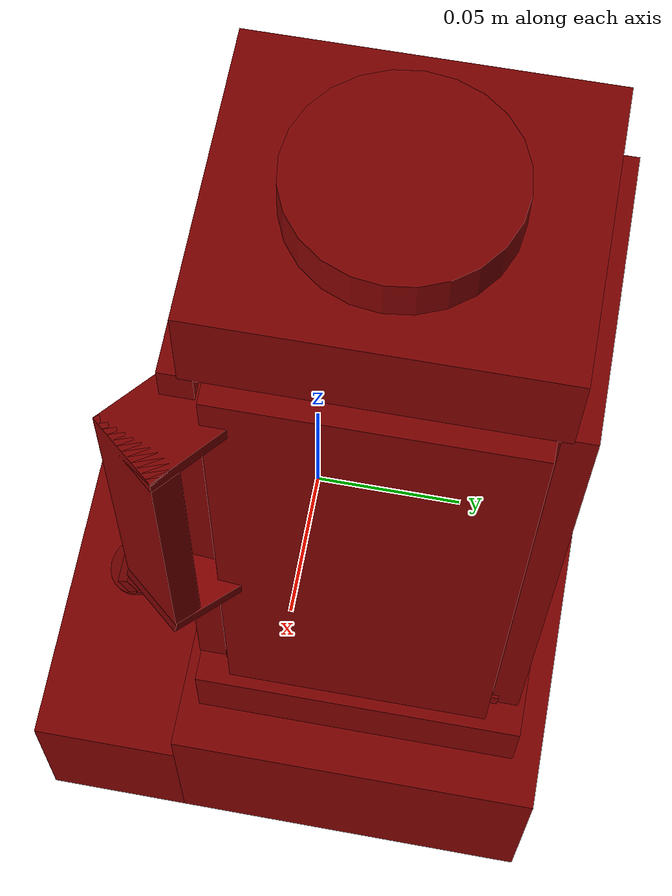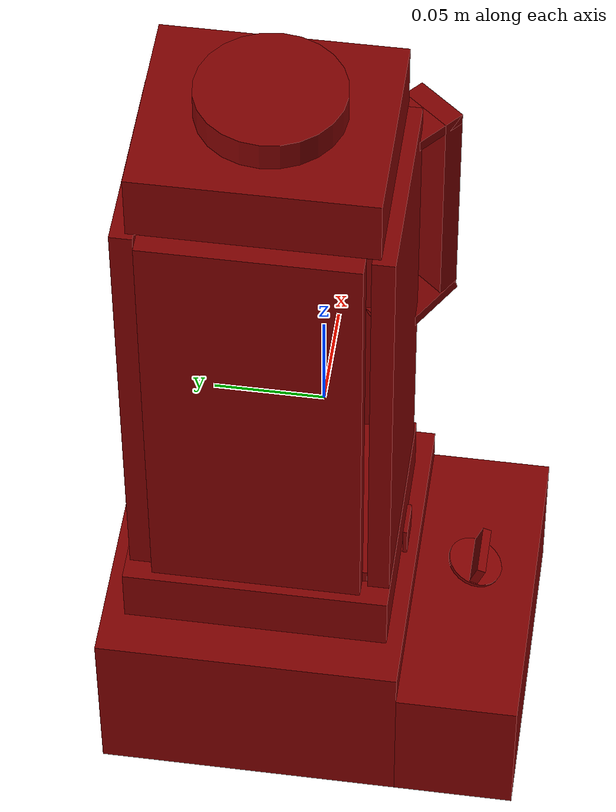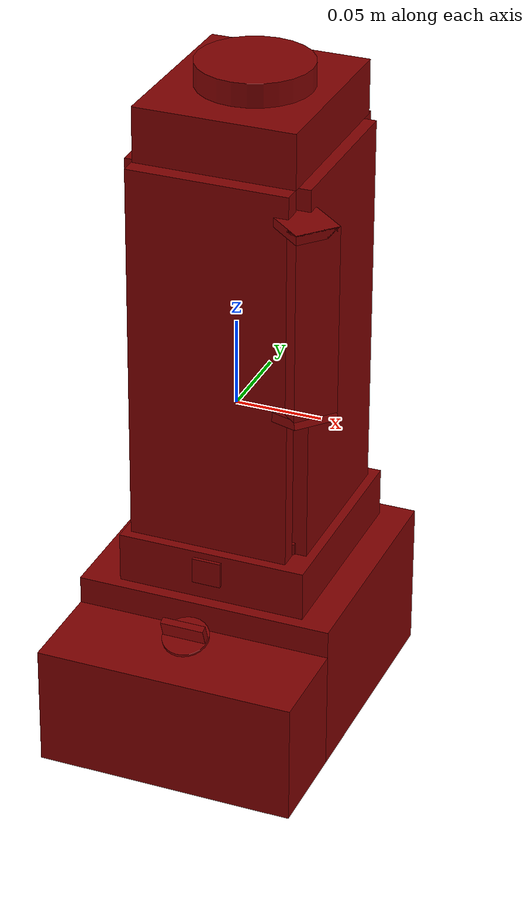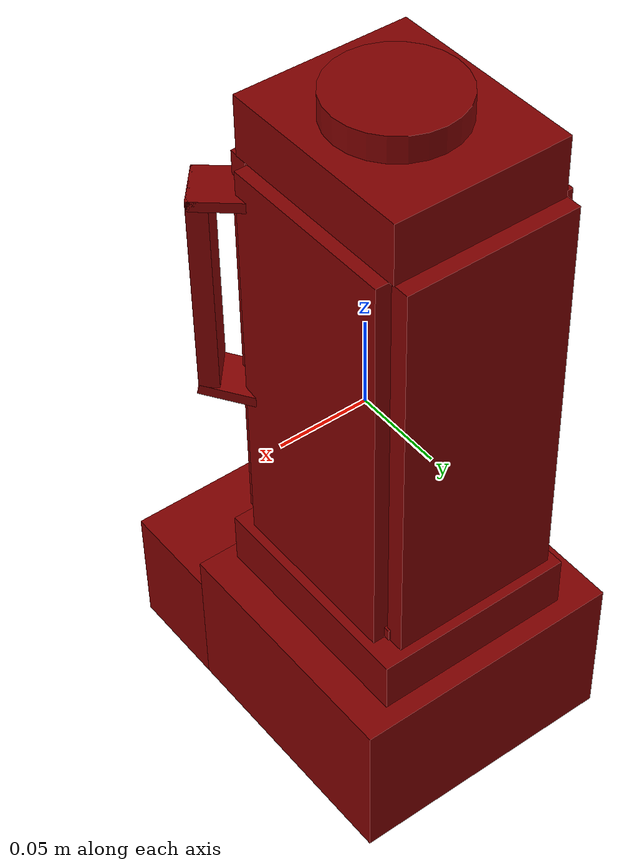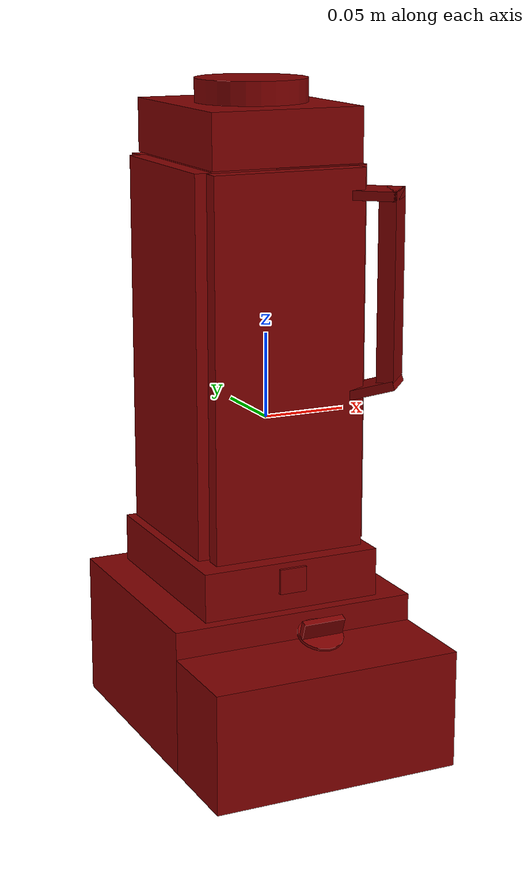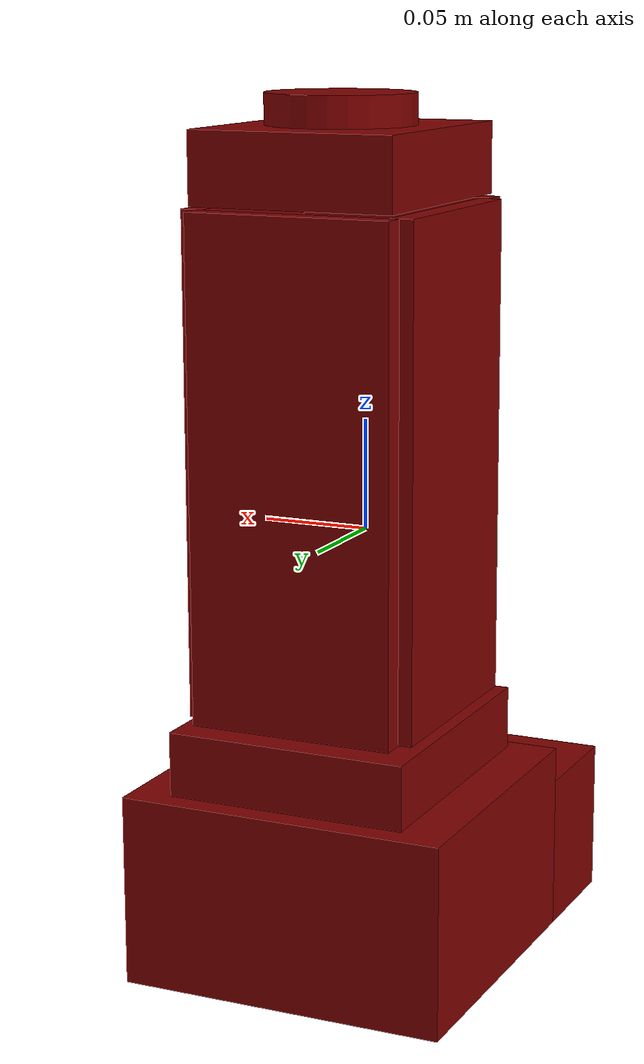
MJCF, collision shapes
<?xml version='1.0' encoding='UTF-8'?>
<mujoco model="model">
  <option timestep="0.002" gravity="0.0 0.0 -9.81"/>
  <compiler angle="radian"/>
  <asset>
    <mesh file="visuals/Blade001.obj" name="Blade001_vis"/>
    <mesh file="visuals/Body001.obj" name="Body001_vis"/>
    <mesh file="visuals/Button001.obj" name="Button001_vis"/>
    <mesh file="visuals/Jug001.obj" name="Jug001_vis"/>
    <mesh file="visuals/Jug001_Clear.obj" name="Jug001_Clear_vis"/>
    <mesh file="visuals/Knob001.obj" name="Knob001_vis"/>
    <mesh file="visuals/Lid001.obj" name="Lid001_vis"/>
    <texture file="visuals/T_BC001.png" name="Body001_material" type="2d"/>
    <material name="Body001_material" rgba="1 1 1 1.0" texture="Body001_material" shininess="0.4472135901451111" specular="1"/>
    <texture file="visuals/T_BC001.png" name="Button001_material" type="2d"/>
    <material name="Button001_material" rgba="1 1 1 1.0" texture="Button001_material" shininess="0.4472135901451111" specular="0.3103448502657381"/>
    <material name="Jug001_Clear_material" rgba="0.0231687780469656 0.0231687780469656 0.0231687780469656 0.800000011920929" shininess="0.4472135901451111" specular="0.3103448502657381"/>
    <texture file="visuals/T_BC001.png" name="Blade001_material" type="2d"/>
    <material name="Blade001_material" rgba="1 1 1 1.0" texture="Blade001_material" shininess="0.4472135901451111" specular="2"/>
    <texture file="visuals/T_BC001.png" name="Jug001_material" type="2d"/>
    <material name="Jug001_material" rgba="1 1 1 1.0" texture="Jug001_material" shininess="0.4472135901451111" specular="0.3103448502657381"/>
    <texture file="visuals/T_BC001.png" name="Lid001_material" type="2d"/>
    <material name="Lid001_material" rgba="1 1 1 1.0" texture="Lid001_material" shininess="0.4472135901451111" specular="1"/>
    <texture file="visuals/T_BC001.png" name="Knob001_material" type="2d"/>
    <material name="Knob001_material" rgba="1 1 1 1.0" texture="Knob001_material" shininess="0.4472135901451111" specular="0.3103448502657381"/>
  </asset>
  <default>
    <default class="visual">
      <geom conaffinity="0" contype="0" group="1" type="mesh"/>
    </default>
    <default class="collision">
      <geom group="0" rgba="0.5 0 0 0.5"/>
    </default>
    <default class="spawn">
      <geom group="0" rgba="1 1 1 0.5" contype="0" conaffinity="0"/>
      <site group="0" rgba="1 1 1 0.5"/>
    </default>
    <default class="region">
      <geom group="1" conaffinity="0" contype="0" rgba="0 1 0 0"/>
    </default>
  </default>
  <worldbody>
    <body>
      <body name="object">
        <geom mesh="Body001_vis" type="mesh" solimp="0.998 0.998 0.001" solref="0.001 1" friction="0.95 0.3 0.1" class="visual" material="Body001_material"/>
        <geom class="collision" type="box" pos="-0.0020258694421499968 -0.030168883502483368 -0.1584181785583496" size="0.07490959763526917 0.0708245262503624 0.03526144474744797" quat="1.0 0.0 0.0 0.0"/>
        <geom class="collision" type="box" pos="-0.0020258694421499968 0.026471540331840515 -0.1503266990184784" size="0.07490962743759155 0.07082454860210419 0.04335295036435127" quat="1.0 0.0 0.0 0.0"/>
        <geom class="collision" type="box" pos="-0.00040756986709311604 0.024942170828580856 -0.09374380856752396" size="0.055085498839616776 0.06183500587940216 0.01578441821038723" quat="1.0 0.0 0.0 0.0"/>
        <body name="Button001">
          <joint axis="0.0 1.0 0.0" pos="-0.0013594820629805326 -0.038393616676330566 -0.0882297158241272" limited="true" name="Button001_joint" range="0.0 0.002" type="slide" damping="1" frictionloss="1" armature=".01" stiffness="0.05"/>
          <geom mesh="Button001_vis" type="mesh" solimp="0.998 0.998 0.001" solref="0.001 1" friction="0.95 0.3 0.1" class="visual" material="Button001_material"/>
          <geom class="collision" type="box" pos="-0.0014004569966346025 -0.03962499648332596 -0.08821723610162735" size="0.008371448144316673 0.0010305756004527211 0.007510005030781031" quat="1.0 0.0 0.0 0.0"/>
        </body>
        <body name="Jug001_Clear">
          <geom class="region" name="reg_int" type="box" pos="-0.000112215057015419 0.024409265723079443 0.07400427665561438" size="0.03132480739057064 0.03763407126441598 0.07289641986042261"/>
          <joint axis="0.0 0.0 1.0" pos="0.007170997094362974 0.016377510502934456 0.05982610583305359" limited="true" name="Jug001_Clear_joint" range="0.0 0.06" type="slide" damping="1" frictionloss="1" armature=".01" stiffness="0.05"/>
          <geom mesh="Jug001_Clear_vis" type="mesh" solimp="0.998 0.998 0.001" solref="0.001 1" friction="0.95 0.3 0.1" class="visual" material="Jug001_Clear_material"/>
          <geom class="collision" type="box" pos="-0.0020406977273523808 0.07906260341405869 0.03680555522441864" size="0.04629433900117874 0.005078659858554602 0.11076337844133377" quat="1.0 0.0 0.0 0.0"/>
          <geom class="collision" type="box" pos="-0.0020406977273523808 -0.03178802877664566 0.03680555522441864" size="0.046294357627630234 0.0050786626525223255 0.11076341569423676" quat="1.0 0.0 0.0 0.0"/>
          <geom class="collision" type="box" pos="-0.04904353618621826 0.024452369660139084 0.03680555522441864" size="0.005078672897070646 0.04846791923046112 0.11076346039772034" quat="1.0 0.0 0.0 0.0"/>
          <geom class="collision" type="box" pos="0.05947470664978027 -0.04008115082979202 0.08045615255832672" size="0.013003869913518429 0.004997242242097855 0.054534681141376495" quat="0.908416748046875 0.0 0.0 0.4180658161640167"/>
          <geom class="collision" type="box" pos="0.04659229516983032 0.024452369660139084 0.03680555522441864" size="0.00507867569103837 0.04846794158220291 0.11076349765062332" quat="1.0 0.0 0.0 0.0"/>
          <geom class="collision" type="box" pos="0.049148861318826675 -0.03123866394162178 0.1322721242904663" size="0.013003870844841003 0.018591824918985367 0.0027187110390514135" quat="0.908416748046875 0.0 0.0 0.4180658161640167"/>
          <geom class="collision" type="box" pos="0.0498606413602829 -0.03184819221496582 0.019347650930285454" size="0.013003870844841003 0.018591824918985367 0.0027187110390514135" quat="0.8995760083198547 -0.12642720341682434 -0.05818355828523636 0.4139974117279053"/>
          <geom class="collision" type="box" pos="-0.00040756986709311604 0.024942170828580856 -0.07008633762598038" size="0.045719780027866364 0.051321711391210556 0.0031872245017439127" quat="1.0 0.0 0.0 0.0"/>
          <body name="Blade001">
            <joint axis="0.0 0.0 1.0" pos="0.0007379986345767975 0.022424008697271347 -0.018312767148017883" limited="false" name="Blade001_joint" range="0 360" type="hinge" damping="1" frictionloss="1" armature=".01" stiffness="0.05"/>
            <geom mesh="Blade001_vis" type="mesh" solimp="0.998 0.998 0.001" solref="0.001 1" friction="0.95 0.3 0.1" class="visual" material="Blade001_material"/>
            <geom class="collision" type="cylinder" pos="0.0007597116054967046 0.0224609337747097 -0.023644812405109406" size="0.005605807062238455 0.010063519701361656" quat="1.0 0.0 0.0 0.0"/>
            <geom class="collision" type="box" pos="0.0006925569614395499 0.022401129826903343 -0.012402108870446682" size="0.0047800480388104916 0.008097494952380657 0.00041572595364414155" quat="1.0 0.0 0.0 0.0"/>
            <geom class="collision" type="box" pos="0.0006925569614395499 0.03663609176874161 -0.0062266867607831955" size="0.004780060611665249 0.008834321983158588 0.0004157274670433253" quat="0.9251607656478882 0.3795754909515381 -8.428268992755907e-17 -9.018257868486607e-24"/>
            <geom class="collision" type="box" pos="0.0006925569614395499 0.008210930973291397 -0.0062266867607831955" size="0.004780060611665249 0.008834323845803738 0.0004157275543548167" quat="6.984769385098843e-08 2.8657149542254956e-08 0.3795754909515381 0.9251607656478882"/>
            <geom class="collision" type="box" pos="0.014797752723097801 0.02258811704814434 -0.019276559352874756" size="0.004780060611665249 0.008834323845803738 0.0004157275543548167" quat="0.2684004306793213 -0.6541874408721924 -0.6541874408721924 0.26840049028396606"/>
            <geom class="collision" type="box" pos="-0.013718952424824238 0.02258811704814434 -0.019276559352874756" size="0.004780060611665249 0.008834323845803738 0.0004157275543548167" quat="0.6541875600814819 0.2684003710746765 -0.26840052008628845 -0.6541873216629028"/>
            <geom class="collision" type="cylinder" pos="0.0007597116637043655 0.0224609337747097 -0.010393012315034866" size="0.002967052860185504 0.0029167153406888247" quat="1.0 0.0 0.0 0.0"/>
          </body>
          <body name="Jug001">
            <geom mesh="Jug001_vis" type="mesh" solimp="0.998 0.998 0.001" solref="0.001 1" friction="0.95 0.3 0.1" class="visual" material="Jug001_material"/>
            <geom class="collision" type="box" pos="0.0009972017724066973 0.026123153045773506 -0.052039992064237595" size="0.03561051934957504 0.03759729862213135 0.017532385885715485" quat="1.0 0.0 0.0 0.0"/>
            <geom class="collision" type="box" pos="-0.0020406977273523808 0.07906260341405869 0.03680555522441864" size="0.04629433900117874 0.005078659858554602 0.11076337844133377" quat="1.0 0.0 0.0 0.0"/>
            <geom class="collision" type="box" pos="-0.0020406977273523808 -0.03178802877664566 0.03680555522441864" size="0.046294357627630234 0.0050786626525223255 0.11076341569423676" quat="1.0 0.0 0.0 0.0"/>
            <geom class="collision" type="box" pos="-0.04904353618621826 0.024452369660139084 0.03680555522441864" size="0.005078672897070646 0.04846791923046112 0.11076346039772034" quat="1.0 0.0 0.0 0.0"/>
            <geom class="collision" type="box" pos="0.05947470664978027 -0.04008115082979202 0.08045615255832672" size="0.013003869913518429 0.004997242242097855 0.054534681141376495" quat="0.908416748046875 0.0 0.0 0.4180658161640167"/>
            <geom class="collision" type="box" pos="0.04659229516983032 0.024452369660139084 0.03680555522441864" size="0.00507867569103837 0.04846794158220291 0.11076349765062332" quat="1.0 0.0 0.0 0.0"/>
            <geom class="collision" type="box" pos="0.049148861318826675 -0.03123866394162178 0.1322721242904663" size="0.013003870844841003 0.018591824918985367 0.0027187110390514135" quat="0.908416748046875 0.0 0.0 0.4180658161640167"/>
            <geom class="collision" type="box" pos="0.0498606413602829 -0.03184819221496582 0.019347650930285454" size="0.013003870844841003 0.018591824918985367 0.0027187110390514135" quat="0.8995760083198547 -0.12642720341682434 -0.05818355828523636 0.4139974117279053"/>
            <geom class="collision" type="box" pos="-0.00040756986709311604 0.024942170828580856 -0.07008633762598038" size="0.045719780027866364 0.051321711391210556 0.0031872245017439127" quat="1.0 0.0 0.0 0.0"/>
          </body>
          <body name="Lid001">
            <joint axis="0.0 0.0 1.0" pos="4.999670272809453e-05 0.021151507273316383 0.17154425382614136" limited="true" name="Lid001_joint" range="0.0 0.06" type="slide" damping="1" frictionloss="1" armature=".01" stiffness="0.05"/>
            <geom mesh="Lid001_vis" type="mesh" solimp="0.998 0.998 0.001" solref="0.001 1" friction="0.95 0.3 0.1" class="visual" material="Lid001_material"/>
            <geom class="collision" type="box" pos="-0.0004458885523490608 0.02331925369799137 0.16489829123020172" size="0.04623616486787796 0.053959306329488754 0.01583000272512436" quat="1.0 0.0 0.0 0.0"/>
            <geom class="collision" type="cylinder" pos="0.0011978906113654375 0.022349515929818153 0.1864784210920334" size="0.03287823125720024 0.00790418777614832" quat="1.0 0.0 0.0 0.0"/>
          </body>
        </body>
        <body name="Knob001">
          <joint axis="-1.043081283569336e-07 0.34106022119522095 -0.9400414824485779" pos="-2.7730573037842987e-06 -0.07359564304351807 -0.10804400593042374" limited="true" name="Knob001_joint" range="0.0 3.141592653589793" type="hinge" damping="0.05" frictionloss="0.1" armature="0.001"/>
          <geom mesh="Knob001_vis" type="mesh" solimp="0.998 0.998 0.001" solref="0.001 1" friction="0.95 0.3 0.1" class="visual" material="Knob001_material"/>
          <geom class="collision" type="cylinder" pos="-3.00136161968112e-06 -0.07239316403865814 -0.110542893409729" size="0.013292437419295311 0.00085589534137398" quat="0.9851324558258057 0.17179635167121887 0.0 0.0" density="0.001"/>
          <geom class="collision" type="box" pos="-3.00136161968112e-06 -0.0746711939573288 -0.10515162348747253" size="0.012571274302899837 0.0020898340735584497 0.0051693362183868885" quat="0.9841305613517761 0.17744572460651398 -3.940086912461175e-17 2.567478372521597e-24" density="0.001"/>
        </body>
        <geom class="region" name="reg_main" type="box" pos="0.0 0.0 0.0" size="0.07561199164390564 0.0984310040473938 0.19581326639652252"/>
      </body>
    </body>
  </worldbody>
  <actuator>
    <motor name="Button001_joint_actuator" joint="Button001_joint" gear="0.5"/>
    <motor name="Jug001_Clear_joint_actuator" joint="Jug001_Clear_joint" gear="100"/>
    <motor name="Knob001_joint_actuator" joint="Knob001_joint" gear="10"/>
    <motor name="Blade001_joint_actuator" joint="Blade001_joint" gear="20"/>
    <motor name="Lid001_joint_actuator" joint="Lid001_joint" gear="10"/>
  </actuator>
</mujoco>
